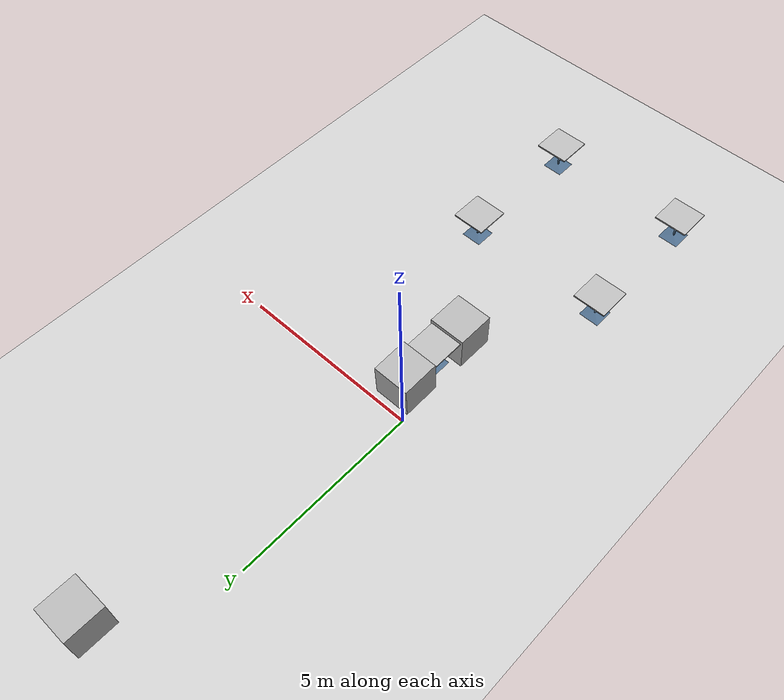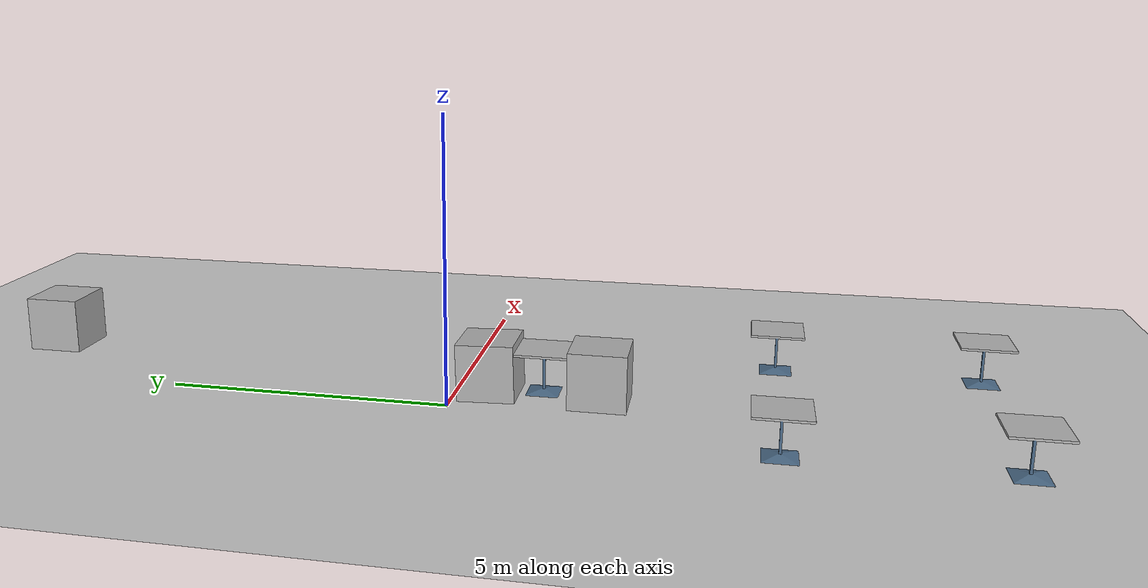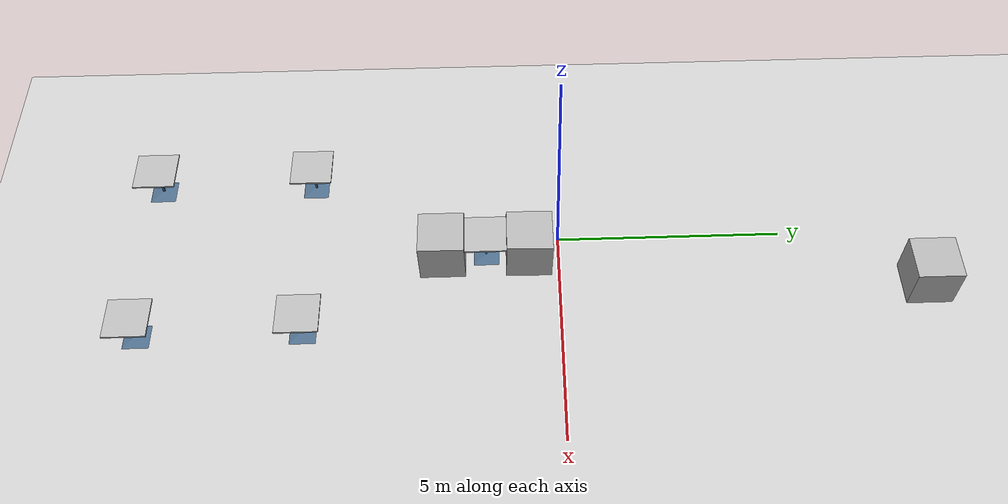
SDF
<sdf version="1.9">
 <world name="empty">
  <physics name="1ms" type="ignored">
   <max_step_size>0.001</max_step_size>
   <real_time_factor>1</real_time_factor>
   <real_time_update_rate>1000</real_time_update_rate>
  </physics>
  <plugin name="gz::sim::systems::Physics" filename="gz-sim-physics-system"/>
  <plugin name="gz::sim::systems::UserCommands" filename="gz-sim-user-commands-system"/>
  <plugin name="gz::sim::systems::SceneBroadcaster" filename="gz-sim-scene-broadcaster-system"/>
  <plugin name="gz::sim::systems::Contact" filename="gz-sim-contact-system"/>
  <gravity>0 0 -9.8</gravity>
  <magnetic_field>6e-06 2.3e-05 -4.2e-05</magnetic_field>
  <atmosphere type="adiabatic"/>
  <scene><ambient>0.4 0.4 0.4 1</ambient><background>0.7 0.7 0.7 1</background><shadows>true</shadows></scene>
  <model name="ground_plane">
   <static>true</static>
   <link name="link">
    <collision name="collision">
     <geometry><plane><normal>0 0 1</normal><size>100 100</size></plane></geometry>
     <surface><friction><ode><mu>100</mu><mu2>50</mu2></ode></friction></surface>
    </collision>
    <visual name="visual">
     <cast_shadows>false</cast_shadows>
     <geometry><plane><normal>0 0 1</normal><size>100 100</size></plane></geometry>
     <material>
      <script><uri>file://media/materials/scripts/gazebo.material</uri><name>Gazebo/Grey</name></script>
     </material>
    </visual>
    <inertial>
     <mass>1</mass>
     <inertia><ixx>1</ixx><ixy>0</ixy><ixz>0</ixz><iyy>1</iyy><iyz>0</iyz><izz>1</izz></inertia>
    </inertial>
   </link>
  </model>
  <include>
   <uri>file:///home/nighthawks/rtab/src/mr_robot_gazebo/models/cafe_table</uri>
   <name>table1</name>
   <pose>0.5 -1.6 0.2 0 -0 0</pose>
  </include>
  <include>
   <uri>file:///home/nighthawks/rtab/src/mr_robot_gazebo/models/cafe_table</uri>
   <name>table2</name>
   <pose>2.4 -5.5 0.2 0 -0 0</pose>
  </include>
  <include>
   <uri>file:///home/nighthawks/rtab/src/mr_robot_gazebo/models/cafe_table</uri>
   <name>table3</name>
   <pose>-1.5 -5.5 0.2 0 -0 0</pose>
  </include>
  <include>
   <uri>file:///home/nighthawks/rtab/src/mr_robot_gazebo/models/cafe_table</uri>
   <name>table4</name>
   <pose>2.4 -9 0.2 0 -0 0</pose>
  </include>
  <include>
   <uri>file:///home/nighthawks/rtab/src/mr_robot_gazebo/models/cafe_table</uri>
   <name>table5</name>
   <pose>-1.5 -9 0.2 0 -0 0</pose>
  </include>
  <model name="box">
   <pose>1.50741 7.99 0.603515 -8e-06 0 0</pose>
   <link name="box_link">
    <inertial>
     <inertia><ixx>0.16666</ixx><ixy>0</ixy><ixz>0</ixz><iyy>0.16666</iyy><iyz>0</iyz><izz>0.16666</izz></inertia>
     <mass>1</mass>
    </inertial>
    <collision name="box_collision"><geometry><box><size>1 1 1</size></box></geometry></collision>
    <visual name="box_visual">
     <geometry><box><size>1 1 1</size></box></geometry>
     <material>
      <ambient>0.3 0.3 0.3 1</ambient>
      <diffuse>0.7 0.7 0.7 1</diffuse>
      <specular>1 1 1 1</specular>
     </material>
    </visual>
   </link>
   <static>false</static>
  </model>
  <model name="box_0">
   <pose>0.513376 -0.653588 0.598733 -0.030691 0 -0</pose>
   <link name="box_link">
    <inertial>
     <inertia><ixx>0.16666</ixx><ixy>0</ixy><ixz>0</ixz><iyy>0.16666</iyy><iyz>0</iyz><izz>0.16666</izz></inertia>
     <mass>1</mass>
    </inertial>
    <collision name="box_collision"><geometry><box><size>1 1 1</size></box></geometry></collision>
    <visual name="box_visual">
     <geometry><box><size>1 1 1</size></box></geometry>
     <material>
      <ambient>0.3 0.3 0.3 1</ambient>
      <diffuse>0.7 0.7 0.7 1</diffuse>
      <specular>1 1 1 1</specular>
     </material>
    </visual>
   </link>
   <static>false</static>
  </model>
  <model name="box_1">
   <pose>0.487789 -2.56071 0.577177 -0 -0 0</pose>
   <link name="box_link">
    <inertial>
     <inertia><ixx>0.16666</ixx><ixy>0</ixy><ixz>0</ixz><iyy>0.16666</iyy><iyz>0</iyz><izz>0.16666</izz></inertia>
     <mass>1</mass>
    </inertial>
    <collision name="box_collision"><geometry><box><size>1 1 1</size></box></geometry></collision>
    <visual name="box_visual">
     <geometry><box><size>1 1 1</size></box></geometry>
     <material>
      <ambient>0.3 0.3 0.3 1</ambient>
      <diffuse>0.7 0.7 0.7 1</diffuse>
      <specular>1 1 1 1</specular>
     </material>
    </visual>
   </link>
   <static>false</static>
  </model>
  <light name="sun" type="directional">
   <pose>0 0 10 0 -0 0</pose>
   <intensity>1</intensity>
   <direction>0 0.5 -0.9</direction>
   <diffuse>0.8 0.8 0.8 1</diffuse>
   <specular>0.2 0.2 0.2 1</specular>
   <attenuation>
    <range>1000</range>
    <linear>0.01</linear>
    <constant>0.90000000000000002</constant>
    <quadratic>0.001</quadratic>
   </attenuation>
   <spot><inner_angle>0</inner_angle><outer_angle>0</outer_angle><falloff>0</falloff></spot>
  </light>
  <light name="point_light" type="point">
   <pose>0 -0.377195 6.59868 0 -0 0</pose>
   <cast_shadows>false</cast_shadows>
   <intensity>1</intensity>
   <direction>0 0 -1</direction>
   <diffuse>0.784314 0.784314 0.784314 1</diffuse>
   <specular>0.0980392 0.0980392 0.0980392 1</specular>
   <attenuation>
    <range>50</range>
    <linear>0</linear>
    <constant>0.80000000000000004</constant>
    <quadratic>0.001</quadratic>
   </attenuation>
   <spot><inner_angle>0</inner_angle><outer_angle>0</outer_angle><falloff>0</falloff></spot>
  </light>
 </world>
</sdf>

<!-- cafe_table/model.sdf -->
<sdf version="1.5">
  <model name="cafe_table">
    <static>true</static>
    <link name="link">
      <collision name="surface">
        <pose>0 0 0.755 0 0 0</pose>
        <geometry>
          <box>
            <size>0.913 0.913 0.04</size>
          </box>
        </geometry>
      </collision>

      <collision name="column">
        <pose>0 0 0.37 0 0 0</pose>
        <geometry>
          <box>
            <size>0.042 0.042 0.74</size>
          </box>
        </geometry>
      </collision>

      <collision name="base">
        <pose>0 0 0.02 0 0 0</pose>
        <geometry>
          <box>
            <size>0.56 0.56 0.04</size>
          </box>
        </geometry>
      </collision>

      <visual name="visual">
        <geometry>
          <mesh>
            <uri>model://../model_source/models/cafe_table/meshes/cafe_table.dae</uri>
          </mesh>
        </geometry>
      </visual>
    </link>
  </model>
</sdf>
